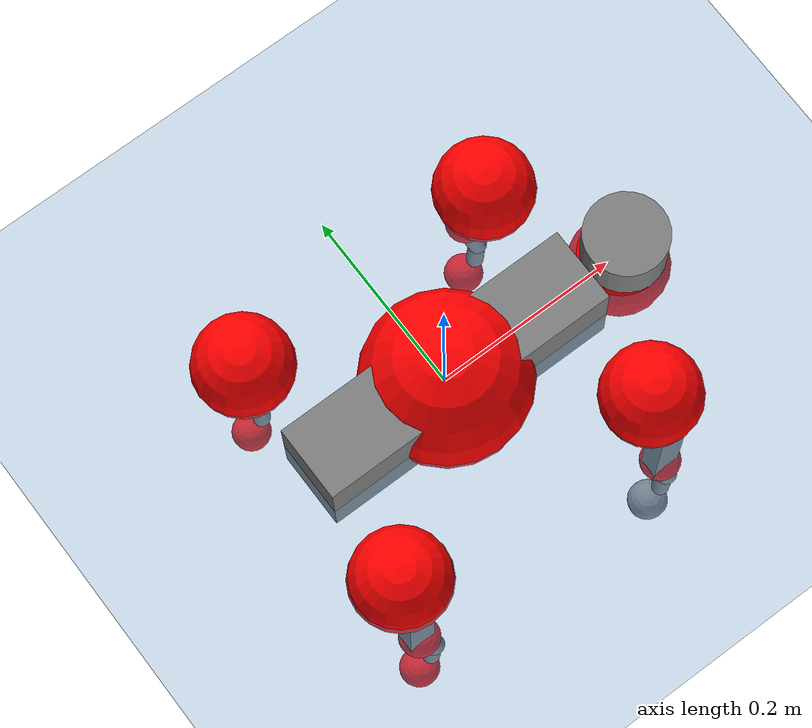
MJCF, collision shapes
<mujoco model="go2">
  <compiler angle="radian" assetdir="assets" balanceinertia="true" inertiafromgeom="false"/>

  <option timestep="0.005" density="1.2" viscosity="2e-05"/>

  <size nkey="1"/>

  <visual>
    <quality shadowsize="8192"/>
    <map shadowclip="0.5"/>
  </visual>

  <default>
    <default class="/">
      <geom contype="0" conaffinity="0" group="1" solref="-1000 -80"/>
      <site size="0.01 0.005 0.005" group="5"/>
      <general forcelimited="true" biastype="affine" gainprm="20" biasprm="0 -20 -0.5"/>
      <default class="go2">
        <joint armature="0.01" damping="0.01" frictionloss="0.2"/>
        <geom condim="1" margin="0.001"/>
        <default class="visual">
          <geom type="mesh" group="2"/>
        </default>
        <default class="collision">
          <geom group="3"/>
          <default class="foot">
            <geom size="0.022 0 0" condim="6" priority="1" friction="0.8 0.02 0.01" solimp="0.015 1 0.022"/>
          </default>
        </default>
        <default class="reward_collision_sphere">
          <geom group="5" rgba="1 0 0 1"/>
        </default>
      </default>
    </default>
  </default>

  <asset>
    <texture type="skybox" colorspace="auto" name="//unnamed_texture_0" builtin="gradient" rgb1="0.95 0.95 0.95" rgb2="0.95 0.95 0.95" width="100" height="600"/>
    <texture type="2d" colorspace="auto" name="texplane" builtin="checker" rgb1="0.345 0.575 0.748" rgb2="0.345 0.575 0.748" markrgb="1 1 1" width="512" height="512"/>
    <material name="MatPlane" class="/" texture="texplane" texuniform="true" texrepeat="2 2" specular="0.9"/>
    <material name="metal" class="/" rgba="0.9 0.95 0.95 1"/>
    <material name="black" class="/" rgba="0 0 0 1"/>
    <material name="white" class="/"/>
    <material name="gray" class="/" rgba="0.671705 0.692426 0.77427 1"/>
    <mesh name="base_0" class="/" file="base_0.obj"/>
    <mesh name="base_1" class="/" file="base_1.obj"/>
    <mesh name="base_2" class="/" file="base_2.obj"/>
    <mesh name="base_3" class="/" file="base_3.obj"/>
    <mesh name="base_4" class="/" file="base_4.obj"/>
    <mesh name="hip_0" class="/" file="hip_0.obj"/>
    <mesh name="hip_1" class="/" file="hip_1.obj"/>
    <mesh name="thigh_0" class="/" file="thigh_0.obj"/>
    <mesh name="thigh_1" class="/" file="thigh_1.obj"/>
    <mesh name="thigh_mirror_0" class="/" file="thigh_mirror_0.obj"/>
    <mesh name="thigh_mirror_1" class="/" file="thigh_mirror_1.obj"/>
    <mesh name="calf_0" class="/" file="calf_0.obj"/>
    <mesh name="calf_1" class="/" file="calf_1.obj"/>
    <mesh name="calf_mirror_0" class="/" file="calf_mirror_0.obj"/>
    <mesh name="calf_mirror_1" class="/" file="calf_mirror_1.obj"/>
    <mesh name="foot" class="/" file="foot.obj"/>
  </asset>

  <worldbody>
    <geom name="floor" class="/" size="100 100 0.125" type="plane" group="0" material="MatPlane"/>
    <light name="toplight_shadow" class="/" pos="0 0 5" dir="0.0990148 0.0990148 -0.990148" type="directional" ambient="0.04 0.04 0.04" diffuse="0.55 0.55 0.55" specular="0.12 0.12 0.12"/>
    <light name="toplight_fill" class="/" pos="0 0 5" dir="0.0990148 0.0990148 -0.990148" type="directional" castshadow="false" ambient="0.04 0.04 0.04" diffuse="0.3 0.3 0.3" specular="0.08 0.08 0.08"/>
    <body name="trunk" childclass="go2" pos="0.00183565 -0.000859615 0.00385789" quat="0.999999 0.000476532 -0.000941582 0.00103355">
      <inertial pos="0.0182262 -0.00150455 -0.00406761" quat="-0.0034632 0.706687 0.00676194 0.707486" mass="4.41386" diaginertia="0.0260841 0.158965 0.00516742"/>
      <joint name="//unnamed_joint_0" type="free" armature="0" damping="0" frictionloss="0"/>
      <geom name="//unnamed_geom_1" class="visual" material="black" mesh="base_0"/>
      <geom name="//unnamed_geom_2" class="visual" material="black" mesh="base_1"/>
      <geom name="//unnamed_geom_3" class="visual" material="black" mesh="base_2"/>
      <geom name="//unnamed_geom_4" class="visual" material="white" mesh="base_3"/>
      <geom name="//unnamed_geom_5" class="visual" material="gray" mesh="base_4"/>
      <geom name="trunk_1" class="collision" size="0.16478 0.040954 0.0499332" type="box"/>
      <geom name="trunk_2" class="collision" size="0.0438011 0.039421" pos="0.21833 0 0.00740873" type="cylinder"/>
      <geom name="trunk_3" class="collision" size="0.041173" pos="0.224459 0 -0.0444524"/>
      <geom name="//unnamed_geom_9" class="reward_collision_sphere" size="0.0876021"/>
      <geom name="//unnamed_geom_10" class="reward_collision_sphere" size="0.0525613" pos="0.2145 0 -0.0333393"/>
      <site name="imu" pos="-0.00755793 0.00471863 0.0359349" size="0.00876021"/>
      <camera name="track" pos="0 -2.24224 0" quat="0.707107 0.707107 0 0" mode="trackcom"/>
      <camera name="ego_camera" pos="0.239014 0 0.0333393" quat="-0.5 -0.5 0.5 0.5"/>
      <body name="FL_hip" pos="0.148002 0.0553642 5.53671e-05" quat="1 -0.000103147 0.000544909 -6.43881e-05">
        <inertial pos="-0.0017026 0.00184494 0.00400341" quat="0.487895 0.490018 0.514348 0.507235" mass="0.448541" diaginertia="0.000228934 0.00100832 0.000105554"/>
        <joint name="FL_hip_joint" pos="0 0 0" axis="0.999877 -0.0114618 -0.0107142" stiffness="0.00422761" range="-1.03787 1.07474" armature="0.00879884" damping="0.0103201" frictionloss="0.187214"/>
        <geom name="//unnamed_geom_11" class="visual" material="metal" mesh="hip_0"/>
        <geom name="//unnamed_geom_12" class="visual" material="gray" mesh="hip_1"/>
        <geom name="//unnamed_geom_13" class="collision" size="0.040297 0.0175204" pos="0 0.0896897 0" quat="0.707107 0.707107 0 0" type="cylinder"/>
        <geom name="//unnamed_geom_14" class="reward_collision_sphere" size="0.0525613" pos="0 0.0784785 0"/>
        <body name="FL_thigh" pos="0.00117506 0.109215 -0.00292423" quat="1 -3.00652e-05 -0.00026577 0.000536013">
          <inertial pos="-0.00426001 -0.0253044 -0.0245791" quat="0.825881 0.0758662 -0.0248147 0.558166" mass="0.819095" diaginertia="0.0016587 0.0105891 0.00020412"/>
          <joint name="FL_thigh_joint" pos="0 0 0" axis="0.000347846 0.999999 0.000988984" stiffness="0.00547661" range="-1.59277 3.48361" armature="0.00889473" damping="0.00639806" frictionloss="0.175119"/>
          <geom name="//unnamed_geom_15" class="visual" material="metal" mesh="thigh_0"/>
          <geom name="//unnamed_geom_16" class="visual" material="gray" mesh="thigh_1"/>
          <geom name="//unnamed_geom_17" class="collision" size="0.0932963 0.0107313 0.0148924" pos="0 0 -0.0789029" quat="0.707107 0 0.707107 0" type="box"/>
          <body name="FL_calf" pos="4.31677e-05 -0.000500111 -0.158469" quat="1 6.42733e-05 3.60802e-06 2.174e-05">
            <inertial pos="0.00970599 0.00255037 -0.103895" quat="0.709856 0.000897426 -0.00332741 0.704338" mass="0.160459" diaginertia="0.00040637 0.00263718 1.19849e-05"/>
            <joint name="FL_calf_joint" pos="0 0 0" axis="0.000628095 0.999996 -0.00262869" range="-2.62869 -0.818396" armature="0.00777155" damping="0" frictionloss="0.13831"/>
            <geom name="//unnamed_geom_18" class="visual" material="gray" mesh="calf_0"/>
            <geom name="//unnamed_geom_19" class="visual" material="black" mesh="calf_1"/>
            <geom name="FL_calf0" class="collision" size="0.0105123 0.0525613" pos="0.00612856 0 -0.0444524" quat="0.994493 0 -0.104807 0" type="cylinder"/>
            <geom name="//unnamed_geom_21" class="collision" size="0.00963623 0.0284707" pos="0.0153214 0 -0.109649" quat="0.999688 0 0.0249974 0" type="cylinder"/>
            <geom name="//unnamed_geom_22" class="visual" pos="0 0 -0.157806" quat="1 0 0 0" material="black" mesh="foot"/>
            <geom name="FL_foot" class="foot" size="0.0181595" pos="-0.00153214 0 -0.157806"/>
            <geom name="//unnamed_geom_24" class="reward_collision_sphere" size="0.0219005"/>
            <geom name="//unnamed_geom_25" class="reward_collision_sphere" size="0.0219005" pos="-0.00153214 0 -0.157806"/>
            <site name="FL_foot" class="foot" pos="-0.00153214 0 -0.157806" size="0.00876021"/>
          </body>
        </body>
      </body>
      <body name="FR_hip" pos="0.147773 -0.0542183 0.00136195" quat="0.999998 -0.00201409 0.000598598 -0.000161127">
        <inertial pos="-0.0059987 -0.00173788 -0.00162598" quat="0.48843 0.495957 0.504115 0.511204" mass="0.418987" diaginertia="0.000232417 0.00102783 0.000106339"/>
        <joint name="FR_hip_joint" pos="0 0 0" axis="0.999985 -0.00325138 -0.00445967" stiffness="0.0133154" range="-0.973791 1.02122" armature="0.00977837" damping="0.00715615" frictionloss="0.178855"/>
        <geom name="//unnamed_geom_26" class="visual" pos="0 3.31256e-09 1.42083e-07" quat="4.63268e-05 1 0 0" material="metal" mesh="hip_0"/>
        <geom name="//unnamed_geom_27" class="visual" pos="0 5.37006e-09 -3.51425e-07" quat="4.63268e-05 1 0 0" material="gray" mesh="hip_1"/>
        <geom name="//unnamed_geom_28" class="collision" size="0.040297 0.0175204" pos="0 -0.0896897 0" quat="0.707107 0.707107 0 0" type="cylinder"/>
        <geom name="//unnamed_geom_29" class="reward_collision_sphere" size="0.0525613" pos="0 -0.0784785 0"/>
        <body name="FR_thigh" pos="0.00171404 -0.107763 -0.00480879" quat="1 0.000590668 0.000738937 -0.000100669">
          <inertial pos="-0.00390132 0.0247854 -0.0271138" quat="0.54234 -0.0257888 0.0818812 0.835762" mass="0.765832" diaginertia="0.00156958 0.0104923 0.000200676"/>
          <joint name="FR_thigh_joint" pos="0 0 0" axis="-0.000628049 -0.999991 0.00418779" range="-3.4986 1.54856" armature="0.00782156" damping="0.0329296" frictionloss="0.1842"/>
          <geom name="//unnamed_geom_30" class="visual" material="metal" mesh="thigh_mirror_0"/>
          <geom name="//unnamed_geom_31" class="visual" material="gray" mesh="thigh_mirror_1"/>
          <geom name="//unnamed_geom_32" class="collision" size="0.0932963 0.0107313 0.0148924" pos="0 0 -0.0789029" quat="0.707107 0 0.707107 0" type="box"/>
          <body name="FR_calf" pos="0.00317828 0.000854689 -0.161249" quat="0.999999 0.000443815 0.00100641 -0.000487333">
            <inertial pos="0.00216064 0.00337848 -0.106152" quat="0.705141 -0.0117486 0.0226992 0.708606" mass="0.163269" diaginertia="0.00040309 0.00261117 1.21908e-05"/>
            <joint name="FR_calf_joint" pos="0 0 0" axis="-0.00598371 -0.999982 -0.000244057" range="0.842728 2.69678" armature="0.00922031" damping="0.0108682" frictionloss="0.160946"/>
            <geom name="//unnamed_geom_33" class="visual" material="gray" mesh="calf_mirror_0"/>
            <geom name="//unnamed_geom_34" class="visual" material="black" mesh="calf_mirror_1"/>
            <geom name="FR_calf0" class="collision" size="0.0113883 0.0525613" pos="0.0076607 0 -0.0444524" quat="0.995004 0 -0.0998334 0" type="cylinder"/>
            <geom name="//unnamed_geom_36" class="collision" size="0.00963623 0.0284707" pos="0.0153214 0 -0.109649" quat="0.999688 0 0.0249974 0" type="cylinder"/>
            <geom name="//unnamed_geom_37" class="visual" pos="0 0 -0.157806" quat="1 0 0 0" material="black" mesh="foot"/>
            <geom name="FR_foot" class="foot" size="0.0220341" pos="-0.00153214 0 -0.157806"/>
            <geom name="//unnamed_geom_39" class="reward_collision_sphere" size="0.0219005"/>
            <geom name="//unnamed_geom_40" class="reward_collision_sphere" size="0.0219005" pos="-0.00153214 0 -0.157806"/>
            <site name="FR_foot" class="foot" pos="-0.00153214 0 -0.157806" size="0.00876021"/>
          </body>
        </body>
      </body>
      <body name="RL_hip" pos="-0.148741 0.0518877 -0.00258752" quat="0.999999 -0.00107734 -0.000315751 -8.87437e-05">
        <inertial pos="0.0017149 0.00465175 0.00381158" quat="0.509712 0.500141 0.500228 0.489719" mass="0.441265" diaginertia="0.000225563 0.00107101 0.000106879"/>
        <joint name="RL_hip_joint" pos="0 0 0" axis="-0.99993 0.0111921 0.00394817" stiffness="0.00883569" range="-1.00644 0.991696" armature="0.00802148" damping="0.00656282" frictionloss="0.180179"/>
        <geom name="//unnamed_geom_41" class="visual" pos="-2.19512e-10 0 -4.30294e-08" quat="4.63268e-05 0 1 0" material="metal" mesh="hip_0"/>
        <geom name="//unnamed_geom_42" class="visual" pos="-3.55855e-10 0 -3.81609e-08" quat="4.63268e-05 0 1 0" material="gray" mesh="hip_1"/>
        <geom name="//unnamed_geom_43" class="collision" size="0.040297 0.0175204" pos="0 0.0896897 0" quat="0.707107 0.707107 0 0" type="cylinder"/>
        <geom name="//unnamed_geom_44" class="reward_collision_sphere" size="0.0525613" pos="0 0.0784785 0"/>
        <body name="RL_thigh" pos="0.00201968 0.108896 -0.0055407" quat="1 -0.000128932 -0.000117209 3.38609e-05">
          <inertial pos="-0.00737339 -0.0245322 -0.0198948" quat="0.829478 0.0846602 -0.0200511 0.551721" mass="0.722542" diaginertia="0.00141702 0.00994915 0.000183995"/>
          <joint name="RL_thigh_joint" pos="0 0 0" axis="-0.0256244 0.999663 0.00423902" stiffness="0.00369688" range="-0.531584 4.54364" armature="0.00862103" damping="0.0340155" frictionloss="0.191663"/>
          <geom name="//unnamed_geom_45" class="visual" material="metal" mesh="thigh_0"/>
          <geom name="//unnamed_geom_46" class="visual" material="gray" mesh="thigh_1"/>
          <geom name="//unnamed_geom_47" class="collision" size="0.0932963 0.0107313 0.0148924" pos="0 0 -0.0789029" quat="0.707107 0 0.707107 0" type="box"/>
          <body name="RL_calf" pos="0.00114067 -0.00128787 -0.155356" quat="1 -0.000421709 0.000185488 0.000183225">
            <inertial pos="0.00837052 -0.00070575 -0.100524" quat="0.703198 -0.00512182 -0.0073208 0.710937" mass="0.16355" diaginertia="0.000393183 0.00255123 1.21929e-05"/>
            <joint name="RL_calf_joint" pos="0 0 0" axis="-0.00065884 0.999909 -0.0134554" range="-2.68202 -0.739456" armature="0.00755386" damping="0.0276571" frictionloss="0.179276"/>
            <geom name="//unnamed_geom_48" class="visual" material="gray" mesh="calf_0"/>
            <geom name="//unnamed_geom_49" class="visual" material="black" mesh="calf_1"/>
            <geom name="RL_calf0" class="collision" size="0.0113883 0.0525613" pos="0.0076607 0 -0.0444524" quat="0.995004 0 -0.0998334 0" type="cylinder"/>
            <geom name="//unnamed_geom_51" class="collision" size="0.00963623 0.0284707" pos="0.0153214 0 -0.109649" quat="0.999688 0 0.0249974 0" type="cylinder"/>
            <geom name="//unnamed_geom_52" class="visual" pos="0 0 -0.157806" quat="1 0 0 0" material="black" mesh="foot"/>
            <geom name="RL_foot" class="foot" size="0.0210685" pos="-0.00153214 0 -0.157806"/>
            <geom name="//unnamed_geom_54" class="reward_collision_sphere" size="0.0219005"/>
            <geom name="//unnamed_geom_55" class="reward_collision_sphere" size="0.0219005" pos="-0.00153214 0 -0.157806"/>
            <site name="RL_foot" class="foot" pos="-0.00153214 0 -0.157806" size="0.00876021"/>
          </body>
        </body>
      </body>
      <body name="RR_hip" pos="-0.152767 -0.0514264 -0.0127914" quat="1 0.000559329 -0.000380434 -0.000669972">
        <inertial pos="0.00528578 -0.00272116 0.0010483" quat="0.487742 0.503299 0.500051 0.508671" mass="0.46077" diaginertia="0.000213037 0.00099956 0.000103663"/>
        <joint name="RR_hip_joint" pos="0 0 0" axis="-0.999714 -0.0237507 0.00284235" range="-1.08216 1.04699" armature="0.00879084" damping="0.00162436" frictionloss="0.134558"/>
        <geom name="//unnamed_geom_56" class="visual" pos="2.31804e-10 3.31256e-09 -1.85112e-07" quat="2.14617e-09 4.63268e-05 4.63268e-05 -1" material="metal" mesh="hip_0"/>
        <geom name="//unnamed_geom_57" class="visual" pos="3.25452e-10 5.37006e-09 3.13264e-07" quat="2.14617e-09 4.63268e-05 4.63268e-05 -1" material="gray" mesh="hip_1"/>
        <geom name="//unnamed_geom_58" class="collision" size="0.040297 0.0175204" pos="0 -0.0896897 0" quat="0.707107 0.707107 0 0" type="cylinder"/>
        <geom name="//unnamed_geom_59" class="reward_collision_sphere" size="0.0525613" pos="0 -0.0784785 0"/>
        <body name="RR_thigh" pos="-0.00339848 -0.106023 -0.00125647" quat="0.999999 -0.000431645 0.0015553 -0.000242315">
          <inertial pos="-0.00272523 0.0233884 -0.0200799" quat="0.552632 -0.020585 0.0843147 0.828894" mass="0.791106" diaginertia="0.00148446 0.0101203 0.000196028"/>
          <joint name="RR_thigh_joint" pos="0 0 0" axis="-0.00152138 -0.999915 -0.0129755" stiffness="0.00401713" range="-4.55074 0.539716" armature="0.00833996" damping="0" frictionloss="0.15253"/>
          <geom name="//unnamed_geom_60" class="visual" material="metal" mesh="thigh_mirror_0"/>
          <geom name="//unnamed_geom_61" class="visual" material="gray" mesh="thigh_mirror_1"/>
          <geom name="//unnamed_geom_62" class="collision" size="0.0932963 0.0107313 0.0148924" pos="0 0 -0.0789029" quat="0.707107 0 0.707107 0" type="box"/>
          <body name="RR_calf" pos="0.00239585 -0.00145968 -0.156459" quat="0.999997 -0.000622912 0.000847838 0.00221093">
            <inertial pos="0.00702681 0.000772042 -0.104341" quat="0.703404 -0.0153387 0.00960759 0.71056" mass="0.158818" diaginertia="0.000385878 0.0026614 1.24237e-05"/>
            <joint name="RR_calf_joint" pos="0 0 0" axis="0.00679428 -0.999786 -0.0195152" stiffness="0.0131035" range="0.797218 2.66998" armature="0.00837714" damping="0.0225948" frictionloss="0.152323"/>
            <geom name="//unnamed_geom_63" class="visual" material="gray" mesh="calf_mirror_0"/>
            <geom name="//unnamed_geom_64" class="visual" material="black" mesh="calf_mirror_1"/>
            <geom name="RR_calf0" class="collision" size="0.0113883 0.0525613" pos="0.0076607 0 -0.0444524" quat="0.995004 0 -0.0998334 0" type="cylinder"/>
            <geom name="//unnamed_geom_66" class="collision" size="0.00963623 0.0284707" pos="0.0153214 0 -0.109649" quat="0.999688 0 0.0249974 0" type="cylinder"/>
            <geom name="//unnamed_geom_67" class="visual" pos="0 0 -0.157806" quat="1 0 0 0" material="black" mesh="foot"/>
            <geom name="RR_foot" class="foot" size="0.0186513" pos="-0.00153214 0 -0.157806"/>
            <geom name="//unnamed_geom_69" class="reward_collision_sphere" size="0.0219005"/>
            <geom name="//unnamed_geom_70" class="reward_collision_sphere" size="0.0219005" pos="-0.00153214 0 -0.157806"/>
            <site name="RR_foot" class="foot" pos="-0.00153214 0 -0.157806" size="0.00876021"/>
          </body>
        </body>
      </body>
    </body>
  </worldbody>

  <contact>
    <pair class="/" geom1="floor" geom2="FL_foot" name="//unnamed_contact_0"/>
    <pair class="/" geom1="floor" geom2="FR_foot" name="//unnamed_contact_1"/>
    <pair class="/" geom1="floor" geom2="RL_foot" name="//unnamed_contact_2"/>
    <pair class="/" geom1="floor" geom2="RR_foot" name="//unnamed_contact_3"/>
  </contact>

  <actuator>
    <general name="FL_hip" class="/" joint="FL_hip_joint" forcerange="-20.9955 20.9955" gainprm="18.7317" biasprm="0 -18.7317 -0.407444"/>
    <general name="FL_thigh" class="/" joint="FL_thigh_joint" forcerange="-22.5742 22.5742" gainprm="18.7317" biasprm="0 -18.7317 -0.407444"/>
    <general name="FL_calf" class="/" joint="FL_calf_joint" forcerange="-41.4504 41.4504" gainprm="18.7317" biasprm="0 -18.7317 -0.407444"/>
    <general name="FR_hip" class="/" joint="FR_hip_joint" forcerange="-18.9363 18.9363" gainprm="18.7317" biasprm="0 -18.7317 -0.407444"/>
    <general name="FR_thigh" class="/" joint="FR_thigh_joint" forcerange="-21.7051 21.7051" gainprm="18.7317" biasprm="0 -18.7317 -0.407444"/>
    <general name="FR_calf" class="/" joint="FR_calf_joint" forcerange="-41.2592 41.2592" gainprm="18.7317" biasprm="0 -18.7317 -0.407444"/>
    <general name="RL_hip" class="/" joint="RL_hip_joint" forcerange="-21.0806 21.0806" gainprm="18.7317" biasprm="0 -18.7317 -0.407444"/>
    <general name="RL_thigh" class="/" joint="RL_thigh_joint" forcerange="-23.6769 23.6769" gainprm="18.7317" biasprm="0 -18.7317 -0.407444"/>
    <general name="RL_calf" class="/" joint="RL_calf_joint" forcerange="-36.2152 36.2152" gainprm="18.7317" biasprm="0 -18.7317 -0.407444"/>
    <general name="RR_hip" class="/" joint="RR_hip_joint" forcerange="-21.1268 21.1268" gainprm="18.7317" biasprm="0 -18.7317 -0.407444"/>
    <general name="RR_thigh" class="/" joint="RR_thigh_joint" forcerange="-18.8693 18.8693" gainprm="18.7317" biasprm="0 -18.7317 -0.407444"/>
    <general name="RR_calf" class="/" joint="RR_calf_joint" forcerange="-41.0272 41.0272" gainprm="18.7317" biasprm="0 -18.7317 -0.407444"/>
  </actuator>

  <sensor>
    <gyro site="imu" name="imu_angular_velocity"/>
    <velocimeter site="imu" name="imu_linear_velocity"/>
    <framelinvel objtype="site" objname="FL_foot" name="FL_foot_global_linear_velocity"/>
    <framelinvel objtype="site" objname="FR_foot" name="FR_foot_global_linear_velocity"/>
    <framelinvel objtype="site" objname="RL_foot" name="RL_foot_global_linear_velocity"/>
    <framelinvel objtype="site" objname="RR_foot" name="RR_foot_global_linear_velocity"/>
  </sensor>

  <keyframe>
    <key name="home" qpos="0 0 0.325 1 0 0 0 0.1 0.8 -1.5 -0.1 -0.8 1.5 -0.1 0.8 -1.5 0.1 -0.8 1.5"/>
  </keyframe>
</mujoco>
